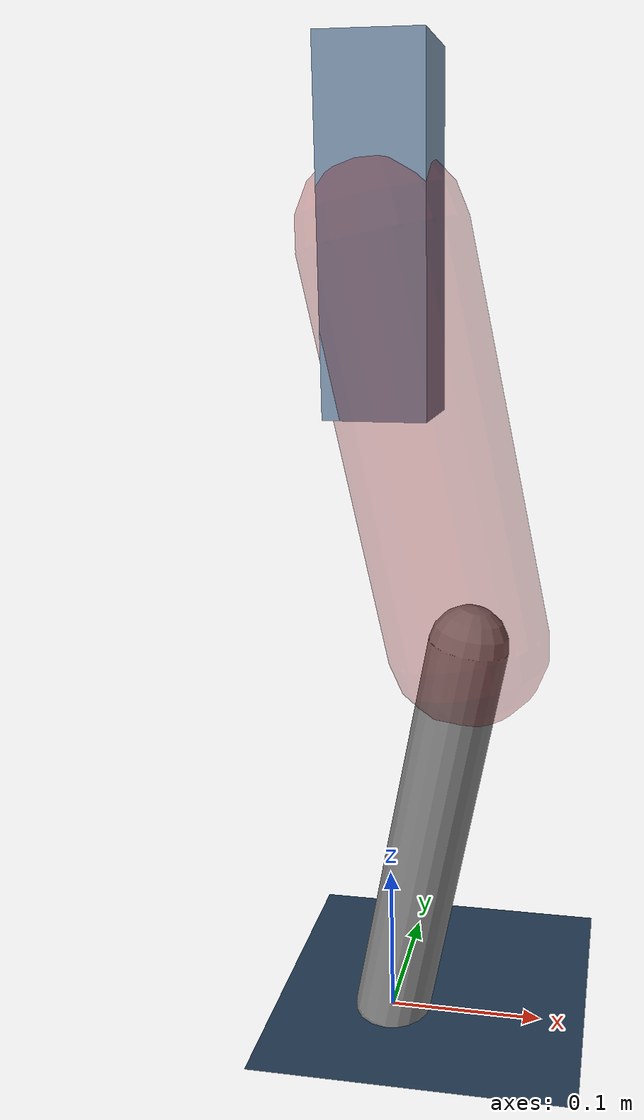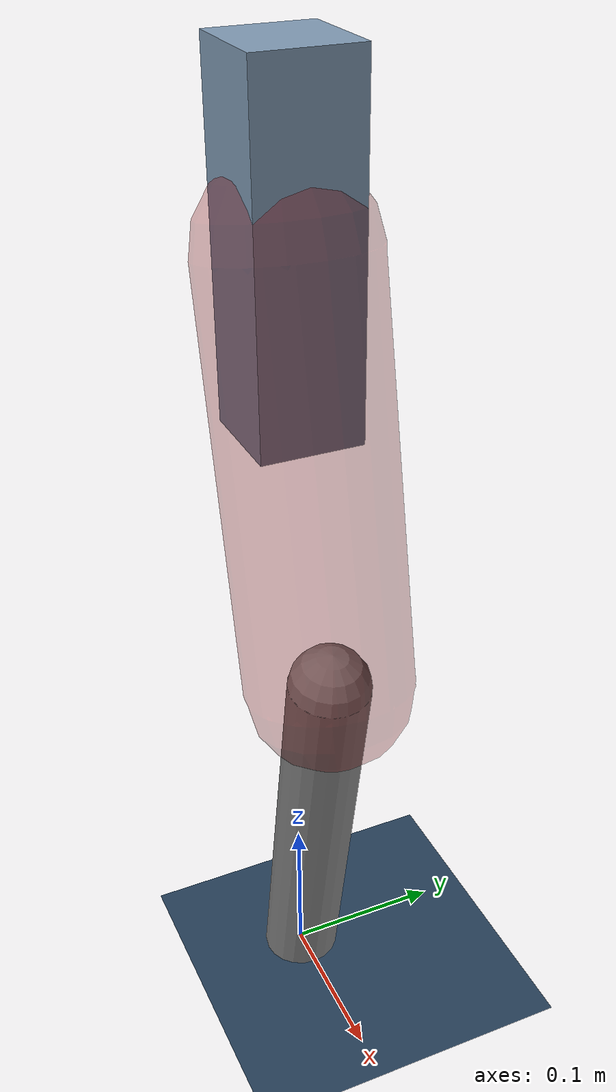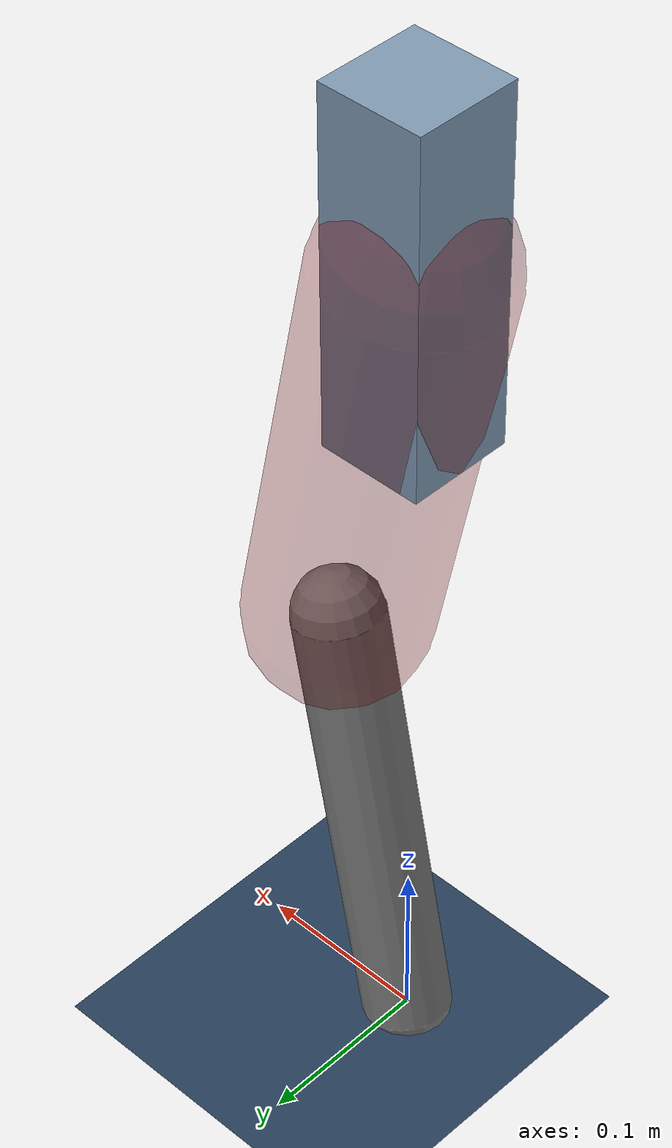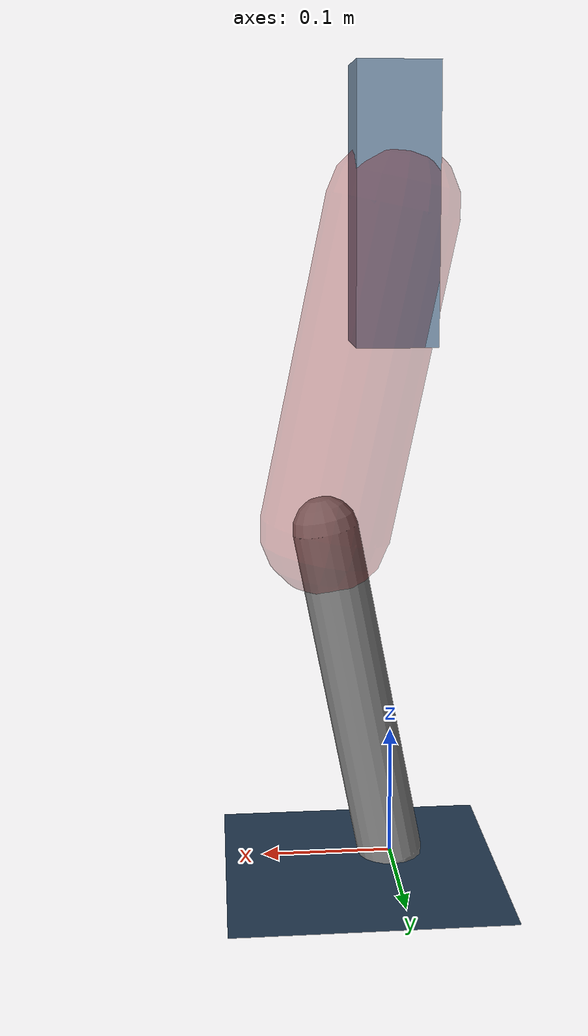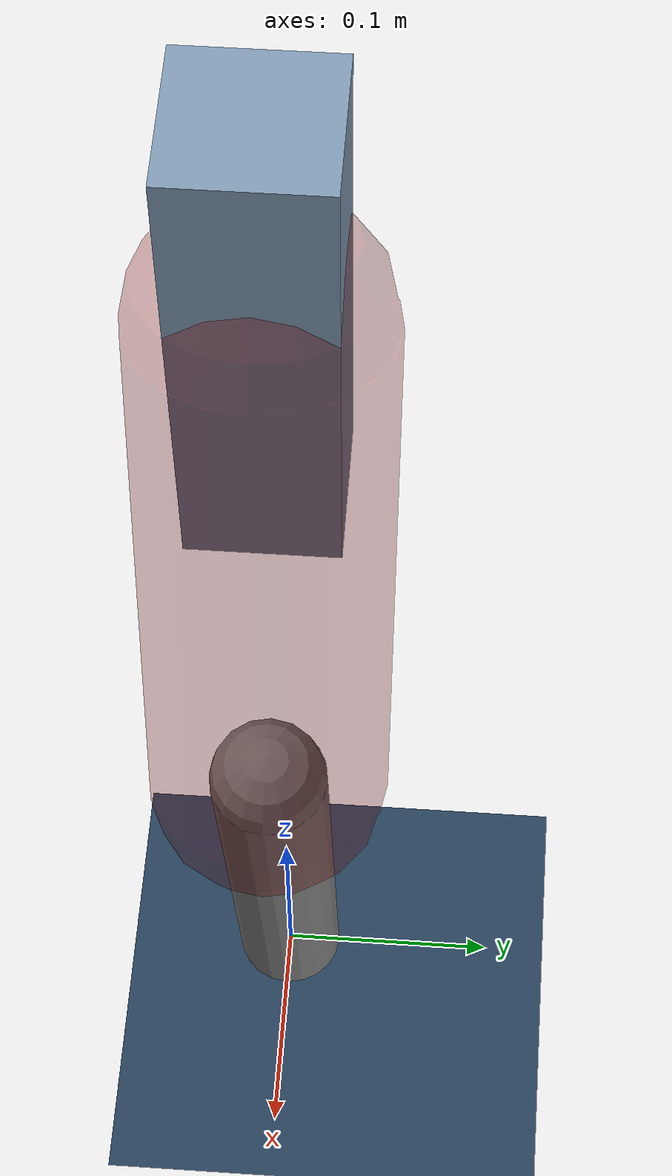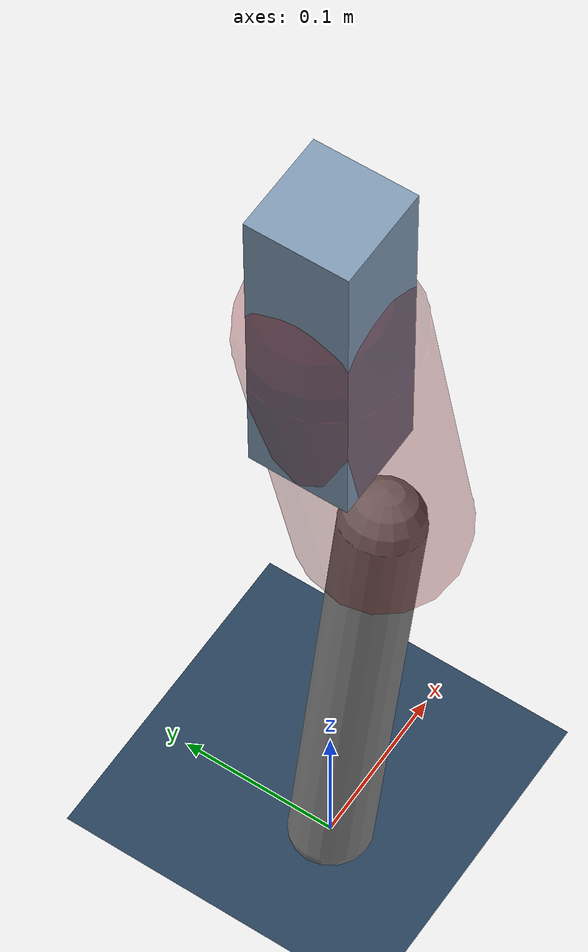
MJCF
<mujoco model="Hopper2D">
	<compiler inertiafromgeom="true" angle="radian" />
	<option timestep="0.001" integrator="implicit" cone="elliptic" solver="Newton" tolerance="1e-10" />

	<default>
		<geom contype="1" conaffinity="1" condim="3" friction="2 0.005 0.0001" solref="0.005 1" />
		<joint limited="true" damping="0.1" />
	</default>

	<asset>
		<texture name="skybox" type="skybox" builtin="gradient" rgb1=".4 .6 .8" rgb2="0 0 0" width="800" height="800" />
		<texture name="grid" type="2d" builtin="checker" rgb1=".1 .2 .3" rgb2=".2 .3 .4" width="300" height="300" mark="edge" markrgb=".2 .3 .4" />
		<material name="ground" texture="grid" texrepeat="1 1" texuniform="true" reflectance="0.1" />
		<material name="leg" rgba="0.5 0.6 0.7 1" />
	</asset>

	<worldbody>

		<geom name="floor" type="plane" size="5 5 0.25" material="ground" />

		<light directional="false" diffuse="0.8 0.8 0.8" specular="0.3 0.3 0.3" pos="0 0 2" dir="0 0 -1" />
		<light mode="targetbodycom" target="base" directional="false" diffuse="0.8 0.8 0.8" specular="0.3 0.3 0.3" pos="0 0 2" dir="0 0 -1" />

		<camera name="fixed" pos="0 -2 1" xyaxes="1 0 0 0 0 1" />
		<camera name="tracking" mode="trackcom" pos="0 -3 1" />

		<body name="root" pos="0 0 0.5001365341944966">
			<joint name="slide_x" type="slide" axis="1 0 0" range="-100 100" />
			<joint name="slide_z" type="slide" axis="0 0 1" range="0 10" />

			<body name="base" pos="0 0 0">
				<geom name="torso" type="box" size="0.03 0.03 0.1" mass="1.556" material="leg" />

				<body name="link1" pos="0 0 0" euler="0 1.363574810202246 0">
					<joint type="hinge" axis="0 -1 0" pos="0 0 0" name="hinge1" limited="true" range="-3.14 3.14" stiffness="0" damping="0.1" />
					<geom name="thigh" type="capsule" fromto="0 0 0 0.24403025393599476 0 0" size="0.05" rgba="0.5 0 0 0.3" mass="0.8409786602335864" />

					<body name="link2" pos="0.24403025393599476 0 0" euler="0 0.39703267131137304 0">
						<joint type="hinge" axis="0 -1 0" pos="0 0 0" name="hinge2" limited="true" range="-3.14 3.14" stiffness="0" damping="0.1" />
						<geom name="shank" type="capsule" fromto="0 0 0 0.2661062802585018 0 0" size="0.025" mass="0.45578502420680145" />

					</body>
				</body>
			</body>
		</body>
	</worldbody>

	<actuator>
		<motor name="torque1" joint="hinge1" ctrlrange="-8.916444334354809 8.916444334354809" ctrllimited="true" gear="1" />
		<motor name="torque2" joint="hinge2" ctrlrange="-95.13962285480682 95.13962285480682" ctrllimited="true" gear="1" />
	</actuator>
</mujoco>
